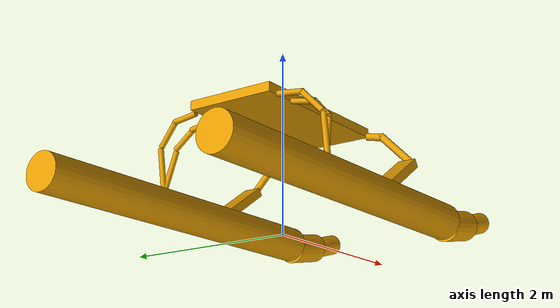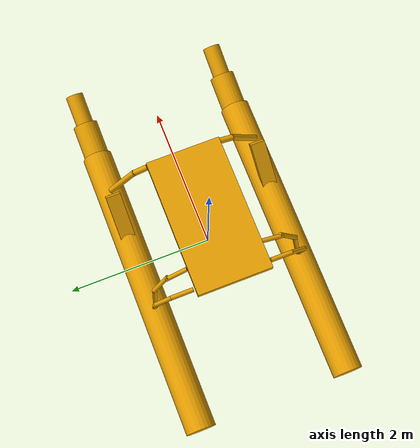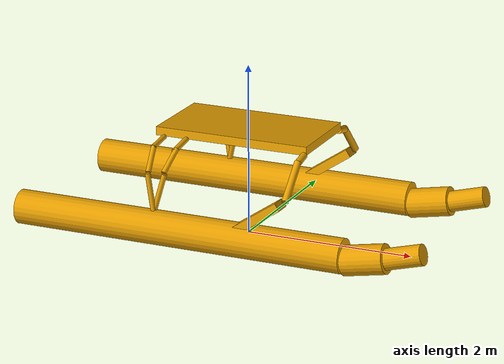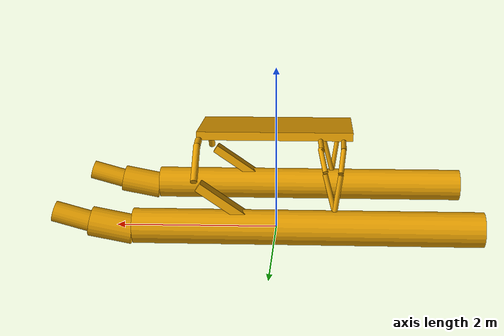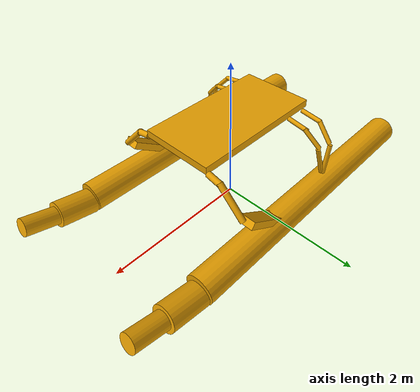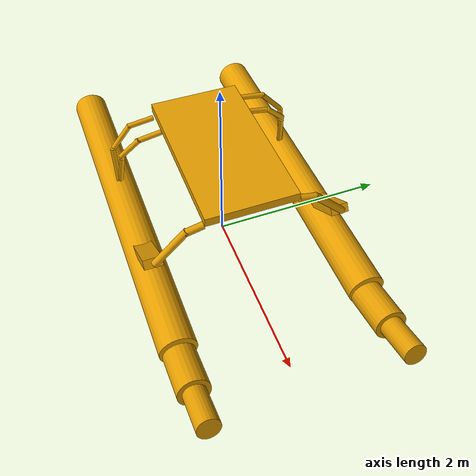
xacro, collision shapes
<?xml version="1.0"?>
<robot xmlns:xacro="http://ros.org/wiki/xacro" name="wam-v">
  <!-- Required arg for melodic and kinetic... -->
  <xacro:arg name="namespace" default="wamv"/>
  <xacro:property name="namespace" value="$(arg namespace)" scope="global" />
  <!-- Macro for creating the main collisions as simple shapes. -->
  <xacro:macro name="main_collisions" params="prefix reflect:=1">
    <!-- Main float -->
    <collision name="${prefix}_float">
      <origin xyz="-0.4 ${1.03*reflect} 0.3" rpy="${0*reflect} 1.57 0" />
      <geometry>
        <cylinder length="4" radius="0.2" />
      </geometry>
    </collision>

    <collision name="${prefix}_mid_float">
      <origin xyz="1.85 ${1.03*reflect} 0.3" rpy="${0*reflect} 1.38 0" />
      <geometry>
        <cylinder length="0.5" radius="0.17" />
      </geometry>
    </collision>
    <collision name="${prefix}_front_float">
      <origin xyz="2.3 ${1.03*reflect} 0.4" rpy="${0*reflect} 1.3 0" />
      <geometry>
        <cylinder length="0.45" radius="0.12" />
      </geometry>
    </collision>

    <!-- Front beam -->
    <collision name="front_${prefix}_beam_lower">
      <origin xyz="0.9 ${0.85*reflect} 1" rpy="${0.78*reflect} 0 0" />
      <geometry>
        <cylinder length="0.5" radius="0.04" />
      </geometry>
    </collision>

    <collision name="front_${prefix}_beam_upper">
      <origin xyz="0.9 ${0.6*reflect} 1.18" rpy="${1.35*reflect} 0 0" />
      <geometry>
        <cylinder length="0.2" radius="0.04" />
      </geometry>
    </collision>

    <!-- Mid beam -->
    <collision name="mid_${prefix}_beam_lower">
      <origin xyz="-0.65 ${0.99*reflect} 0.7" rpy="${0.1*reflect} 0.25 0" />
      <geometry>
        <cylinder length="0.45" radius="0.03" />
      </geometry>
    </collision>

    <collision name="mid_${prefix}_beam_medium">
      <origin xyz="-0.57 ${0.87*reflect} 1.05" rpy="${0.75*reflect} 0.25 0" />
      <geometry>
        <cylinder length="0.32" radius="0.03" />
      </geometry>
    </collision>

    <collision name="mid_${prefix}_beam_upper">
      <origin xyz="-0.55 ${0.65*reflect} 1.17" rpy="${1.35*reflect} 0.25 0" />
      <geometry>
        <cylinder length="0.3" radius="0.03" />
      </geometry>
    </collision>

    <!-- Rear beam -->
    <collision name="rear_${prefix}_beam_lower">
      <origin xyz="-0.74 ${1.03*reflect} 0.7" rpy="${0*reflect} -0.15 0" />
      <geometry>
        <cylinder length="0.45" radius="0.03" />
      </geometry>
    </collision>

    <collision name="rear_${prefix}_beam_medium">
      <origin xyz="-0.79 ${0.91*reflect} 1.05" rpy="${0.75*reflect} -0.15 0" />
      <geometry>
        <cylinder length="0.32" radius="0.03" />
      </geometry>
    </collision>

    <collision name="rear_${prefix}_beam_upper">
      <origin xyz="-0.81 ${0.67*reflect} 1.18" rpy="${1.45*reflect} -0.15 0" />
      <geometry>
        <cylinder length="0.3" radius="0.03" />
      </geometry>
    </collision>

    <!-- Joint -->
    <collision name="${prefix}_joint">
      <origin xyz="0.58 ${1.03*reflect} 0.6" rpy="${0*reflect} -0.6 0" />
      <geometry>
        <box size="0.65 0.2 0.1" />
      </geometry>
    </collision>
  </xacro:macro>

  <!-- Basic model of the 16' WAM-V USV -->
  <link name="${namespace}/base_link">

    <visual>
      <geometry>
        <mesh filename="package://wamv_description/models/WAM-V-Base/mesh/WAM-V-Base.dae"/>
      </geometry>
    </visual>

    <!-- Left base collisions -->
    <xacro:main_collisions prefix="left" reflect="1" />

    <!-- Right side collisions -->
    <xacro:main_collisions prefix="right" reflect="-1" />

     <!-- Top base -->
    <collision name="top_base">
      <origin xyz="0 -0 1.25" rpy="0 0 0" />
      <geometry>
        <box size="1.85 1 0.1" />
      </geometry>
    </collision>

    <inertial>
      <!-- From WAM-V spec sheet -->
      <mass value="180.0"/>
      <inertia ixx="120.0" ixy="0.0" ixz="0.0" iyy="393" iyz="0.0" izz="446.0"/>
    </inertial>
  </link>

  <gazebo>
    <enable_wind>true</enable_wind>
  </gazebo>

  <gazebo reference="${namespace}/base_link">
    <visual>
      <material>
        <diffuse>1.0 1.0 1.0</diffuse>
        <specular>1.0 1.0 1.0</specular>
        <pbr>
          <metal>
            <albedo_map>model://wamv_description/models/WAM-V-Base/mesh/WAM-V_Albedo.png</albedo_map>
            <normal_map>model://wamv_description/models/WAM-V-Base/mesh/WAM-V_Normal.png</normal_map>
            <roughness_map>model://wamv_description/models/WAM-V-Base/mesh/WAM-V_Roughness.png</roughness_map>
            <metalness_map>model://wamv_description/models/WAM-V-Base/mesh/WAM-V_Metalness.png</metalness_map>
          </metal>
        </pbr>
      </material>
    </visual>

    <sensor type="contact" name="contact_sensor">
      <contact>
        <!-- collisions are renamed during urdf -> sdf fixed joint lumping -->
        <collision>${namespace}/base_link_fixed_joint_lump__top_base_collision_24</collision>
        <collision>${namespace}/base_link_fixed_joint_lump__left_float_collision</collision>
        <collision>${namespace}/base_link_fixed_joint_lump__left_mid_float_collision_1</collision>
        <collision>${namespace}/base_link_fixed_joint_lump__left_front_float_collision_2</collision>
        <collision>${namespace}/base_link_fixed_joint_lump__right_float_collision_12</collision>
        <collision>${namespace}/base_link_fixed_joint_lump__right_mid_float_collision_13</collision>
        <collision>${namespace}/base_link_fixed_joint_lump__right_front_float_collision_14</collision>
        <topic>/vrx/contacts</topic>
      </contact>
      <always_on>1</always_on>
      <update_rate>5</update_rate>
    </sensor>
  </gazebo>

</robot>
